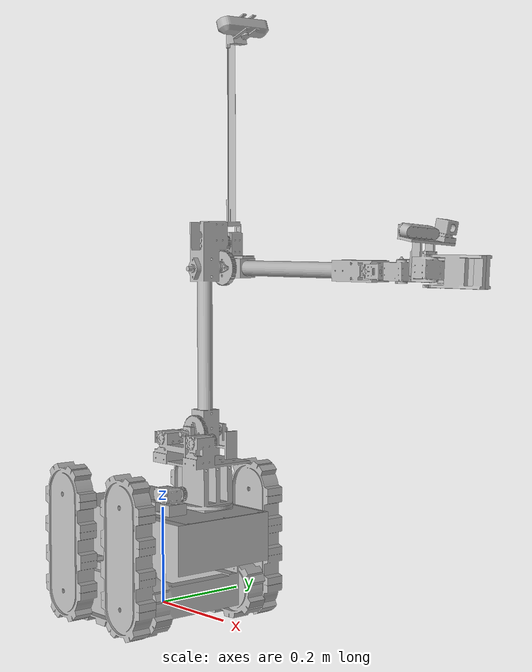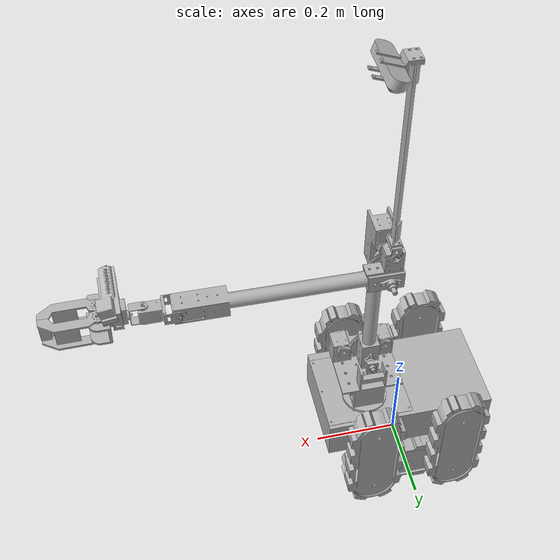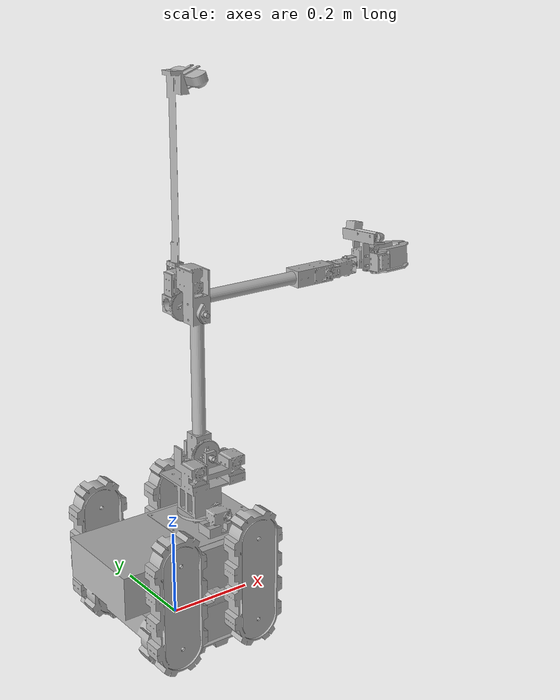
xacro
<?xml version="1.0" ?>
<robot name="Hitro" xmlns:xacro="http://www.ros.org/wiki/xacro">

<xacro:include filename="$(find Hitro_description)/urdf/materials.xacro" />
<xacro:include filename="$(find Hitro_description)/urdf/Hitro.trans" />
<xacro:include filename="$(find Hitro_description)/urdf/Hitro.gazebo" />
<link name="base_link">
  <inertial>
    <origin xyz="0.0023455727002161934 0.00047091776694981947 0.13107186560438153" rpy="0 0 0"/>
    <mass value="11.789533003371805"/>
    <inertia ixx="0.107649" iyy="0.183929" izz="0.214336" ixy="0.0" iyz="-2e-06" ixz="-3.3e-05"/>
  </inertial>
  <visual>
    <origin xyz="0 0 0" rpy="0 0 0"/>
    <geometry>
      <mesh filename="package://Hitro_description/meshes/base_link.stl" scale="0.001 0.001 0.001"/>
    </geometry>
    <material name="silver"/>
  </visual>
  <collision>
    <origin xyz="0 0 0" rpy="0 0 0"/>
    <geometry>
      <mesh filename="package://Hitro_description/meshes/base_link.stl" scale="0.001 0.001 0.001"/>
    </geometry>
  </collision>
</link>

<link name="br_flipper_1">
  <inertial>
    <origin xyz="-6.928644614213886e-05 -0.026691787947826423 0.09533601614626816" rpy="0 0 0"/>
    <mass value="0.8856424819003467"/>
    <inertia ixx="0.008874" iyy="0.009821" izz="0.001203" ixy="-0.0" iyz="0.000109" ixz="5e-06"/>
  </inertial>
  <visual>
    <origin xyz="0.098623 0.136529 -0.03399" rpy="0 0 0"/>
    <geometry>
      <mesh filename="package://Hitro_description/meshes/br_flipper_1.stl" scale="0.001 0.001 0.001"/>
    </geometry>
    <material name="silver"/>
  </visual>
  <collision>
    <origin xyz="0.098623 0.136529 -0.03399" rpy="0 0 0"/>
    <geometry>
      <mesh filename="package://Hitro_description/meshes/br_flipper_1.stl" scale="0.001 0.001 0.001"/>
    </geometry>
  </collision>
</link>

<link name="fr_flipper_1">
  <inertial>
    <origin xyz="-6.929773204097933e-05 -0.026691787947827006 0.09533554023830318" rpy="0 0 0"/>
    <mass value="0.8856424819003467"/>
    <inertia ixx="0.008874" iyy="0.009821" izz="0.001203" ixy="-0.0" iyz="0.000109" ixz="5e-06"/>
  </inertial>
  <visual>
    <origin xyz="-0.103377 0.136529 -0.034058" rpy="0 0 0"/>
    <geometry>
      <mesh filename="package://Hitro_description/meshes/fr_flipper_1.stl" scale="0.001 0.001 0.001"/>
    </geometry>
    <material name="silver"/>
  </visual>
  <collision>
    <origin xyz="-0.103377 0.136529 -0.034058" rpy="0 0 0"/>
    <geometry>
      <mesh filename="package://Hitro_description/meshes/fr_flipper_1.stl" scale="0.001 0.001 0.001"/>
    </geometry>
  </collision>
</link>

<link name="bl_flipper_1">
  <inertial>
    <origin xyz="7.444846053443477e-05 0.026691503568869235 0.09531430480252065" rpy="0 0 0"/>
    <mass value="0.8856424819003468"/>
    <inertia ixx="0.008874" iyy="0.00982" izz="0.001203" ixy="-0.0" iyz="-0.000109" ixz="-7e-06"/>
  </inertial>
  <visual>
    <origin xyz="0.098623 -0.137471 -0.03399" rpy="0 0 0"/>
    <geometry>
      <mesh filename="package://Hitro_description/meshes/bl_flipper_1.stl" scale="0.001 0.001 0.001"/>
    </geometry>
    <material name="silver"/>
  </visual>
  <collision>
    <origin xyz="0.098623 -0.137471 -0.03399" rpy="0 0 0"/>
    <geometry>
      <mesh filename="package://Hitro_description/meshes/bl_flipper_1.stl" scale="0.001 0.001 0.001"/>
    </geometry>
  </collision>
</link>

<link name="fl_flipper_1">
  <inertial>
    <origin xyz="7.44371746355943e-05 0.026691503568868236 0.09531382889455595" rpy="0 0 0"/>
    <mass value="0.8856424819003468"/>
    <inertia ixx="0.008874" iyy="0.00982" izz="0.001203" ixy="-0.0" iyz="-0.000109" ixz="-7e-06"/>
  </inertial>
  <visual>
    <origin xyz="-0.103377 -0.137471 -0.034058" rpy="0 0 0"/>
    <geometry>
      <mesh filename="package://Hitro_description/meshes/fl_flipper_1.stl" scale="0.001 0.001 0.001"/>
    </geometry>
    <material name="silver"/>
  </visual>
  <collision>
    <origin xyz="-0.103377 -0.137471 -0.034058" rpy="0 0 0"/>
    <geometry>
      <mesh filename="package://Hitro_description/meshes/fl_flipper_1.stl" scale="0.001 0.001 0.001"/>
    </geometry>
  </collision>
</link>

<link name="arm_base_1">
  <inertial>
    <origin xyz="-0.10046989920058008 -0.12176485106858234 0.015451232617987226" rpy="0 0 0"/>
    <mass value="0.17911052684474799"/>
    <inertia ixx="0.000456" iyy="0.000249" izz="0.000612" ixy="-3.9e-05" iyz="6.3e-05" ixz="9e-06"/>
  </inertial>
  <visual>
    <origin xyz="-0.19232 -0.096071 -0.206587" rpy="0 0 0"/>
    <geometry>
      <mesh filename="package://Hitro_description/meshes/arm_base_1.stl" scale="0.001 0.001 0.001"/>
    </geometry>
    <material name="silver"/>
  </visual>
  <collision>
    <origin xyz="-0.19232 -0.096071 -0.206587" rpy="0 0 0"/>
    <geometry>
      <mesh filename="package://Hitro_description/meshes/arm_base_1.stl" scale="0.001 0.001 0.001"/>
    </geometry>
  </collision>
</link>

<link name="base_1">
  <inertial>
    <origin xyz="-0.0007250558274127239 -0.021534981191169467 0.08573353340348588" rpy="0 0 0"/>
    <mass value="0.6998440147844079"/>
    <inertia ixx="0.002536" iyy="0.002453" izz="0.001958" ixy="-2e-06" iyz="0.000558" ixz="6e-06"/>
  </inertial>
  <visual>
    <origin xyz="-0.099143 -0.039875 -0.212418" rpy="0 0 0"/>
    <geometry>
      <mesh filename="package://Hitro_description/meshes/base_1.stl" scale="0.001 0.001 0.001"/>
    </geometry>
    <material name="silver"/>
  </visual>
  <collision>
    <origin xyz="-0.099143 -0.039875 -0.212418" rpy="0 0 0"/>
    <geometry>
      <mesh filename="package://Hitro_description/meshes/base_1.stl" scale="0.001 0.001 0.001"/>
    </geometry>
  </collision>
</link>

<link name="1link_1">
  <inertial>
    <origin xyz="-0.0008629496221968513 -0.030055296256889887 0.22619297982587672" rpy="0 0 0"/>
    <mass value="0.3811376975336681"/>
    <inertia ixx="0.011662" iyy="0.011561" izz="0.000238" ixy="0.0" iyz="-0.000667" ixz="2.9e-05"/>
  </inertial>
  <visual>
    <origin xyz="-0.098518 -0.069775 -0.366417" rpy="0 0 0"/>
    <geometry>
      <mesh filename="package://Hitro_description/meshes/1link_1.stl" scale="0.001 0.001 0.001"/>
    </geometry>
    <material name="silver"/>
  </visual>
  <collision>
    <origin xyz="-0.098518 -0.069775 -0.366417" rpy="0 0 0"/>
    <geometry>
      <mesh filename="package://Hitro_description/meshes/1link_1.stl" scale="0.001 0.001 0.001"/>
    </geometry>
  </collision>
</link>

<link name="2link_1">
  <inertial>
    <origin xyz="0.20635170196698394 0.038602780502008785 0.0005720601403558234" rpy="0 0 0"/>
    <mass value="0.33819821732309985"/>
    <inertia ixx="0.000175" iyy="0.01074" izz="0.010807" ixy="-0.000219" iyz="-0.0" ixz="-3e-05"/>
  </inertial>
  <visual>
    <origin xyz="-0.097111 -0.066777 -0.700647" rpy="0 0 0"/>
    <geometry>
      <mesh filename="package://Hitro_description/meshes/2link_1.stl" scale="0.001 0.001 0.001"/>
    </geometry>
    <material name="silver"/>
  </visual>
  <collision>
    <origin xyz="-0.097111 -0.066777 -0.700647" rpy="0 0 0"/>
    <geometry>
      <mesh filename="package://Hitro_description/meshes/2link_1.stl" scale="0.001 0.001 0.001"/>
    </geometry>
  </collision>
</link>

<link name="2link2hand_1">
  <inertial>
    <origin xyz="0.05199602533351011 0.02422993039667011 0.000565366789860744" rpy="0 0 0"/>
    <mass value="0.051855108142407236"/>
    <inertia ixx="1.1e-05" iyy="2e-05" izz="2e-05" ixy="0.0" iyz="0.0" ixz="-0.0"/>
  </inertial>
  <visual>
    <origin xyz="-0.51347 -0.082615 -0.702033" rpy="0 0 0"/>
    <geometry>
      <mesh filename="package://Hitro_description/meshes/2link2hand_1.stl" scale="0.001 0.001 0.001"/>
    </geometry>
    <material name="silver"/>
  </visual>
  <collision>
    <origin xyz="-0.51347 -0.082615 -0.702033" rpy="0 0 0"/>
    <geometry>
      <mesh filename="package://Hitro_description/meshes/2link2hand_1.stl" scale="0.001 0.001 0.001"/>
    </geometry>
  </collision>
</link>

<link name="hand_yaw_1">
  <inertial>
    <origin xyz="0.017851837186656172 0.00016947250181670315 -0.018829472095383215" rpy="0 0 0"/>
    <mass value="0.0024620558650562713"/>
    <inertia ixx="1e-06" iyy="1e-06" izz="0.0" ixy="-0.0" iyz="-0.0" ixz="0.0"/>
  </inertial>
  <visual>
    <origin xyz="-0.580748 -0.106765 -0.723346" rpy="0 0 0"/>
    <geometry>
      <mesh filename="package://Hitro_description/meshes/hand_yaw_1.stl" scale="0.001 0.001 0.001"/>
    </geometry>
    <material name="silver"/>
  </visual>
  <collision>
    <origin xyz="-0.580748 -0.106765 -0.723346" rpy="0 0 0"/>
    <geometry>
      <mesh filename="package://Hitro_description/meshes/hand_yaw_1.stl" scale="0.001 0.001 0.001"/>
    </geometry>
  </collision>
</link>

<link name="hand_roll_1">
  <inertial>
    <origin xyz="0.03926282562947525 -0.0006343667919676416 0.0280672054007276" rpy="0 0 0"/>
    <mass value="0.2013221293930582"/>
    <inertia ixx="0.00039" iyy="0.000284" izz="0.00023" ixy="1.9e-05" iyz="-5.9e-05" ixz="4.1e-05"/>
  </inertial>
  <visual>
    <origin xyz="-0.608587 -0.106971 -0.704531" rpy="0 0 0"/>
    <geometry>
      <mesh filename="package://Hitro_description/meshes/hand_roll_1.stl" scale="0.001 0.001 0.001"/>
    </geometry>
    <material name="silver"/>
  </visual>
  <collision>
    <origin xyz="-0.608587 -0.106971 -0.704531" rpy="0 0 0"/>
    <geometry>
      <mesh filename="package://Hitro_description/meshes/hand_roll_1.stl" scale="0.001 0.001 0.001"/>
    </geometry>
  </collision>
</link>

<link name="top_right_1">
  <inertial>
    <origin xyz="0.06140861742337256 -0.003150372581042657 -0.023301799927673117" rpy="0 0 0"/>
    <mass value="0.057735310776424194"/>
    <inertia ixx="2.9e-05" iyy="8.1e-05" izz="6.1e-05" ixy="-7e-06" iyz="-1e-06" ixz="0.0"/>
  </inertial>
  <visual>
    <origin xyz="-0.667521 -0.094865 -0.728561" rpy="0 0 0"/>
    <geometry>
      <mesh filename="package://Hitro_description/meshes/top_right_1.stl" scale="0.001 0.001 0.001"/>
    </geometry>
    <material name="silver"/>
  </visual>
  <collision>
    <origin xyz="-0.667521 -0.094865 -0.728561" rpy="0 0 0"/>
    <geometry>
      <mesh filename="package://Hitro_description/meshes/top_right_1.stl" scale="0.001 0.001 0.001"/>
    </geometry>
  </collision>
</link>

<link name="top_left_1">
  <inertial>
    <origin xyz="0.0612388368041108 0.001928996052491333 -0.023205210120308517" rpy="0 0 0"/>
    <mass value="0.057732876202703155"/>
    <inertia ixx="2.8e-05" iyy="8.1e-05" izz="6.1e-05" ixy="5e-06" iyz="-1e-06" ixz="-1e-06"/>
  </inertial>
  <visual>
    <origin xyz="-0.667422 -0.122865 -0.727649" rpy="0 0 0"/>
    <geometry>
      <mesh filename="package://Hitro_description/meshes/top_left_1.stl" scale="0.001 0.001 0.001"/>
    </geometry>
    <material name="silver"/>
  </visual>
  <collision>
    <origin xyz="-0.667422 -0.122865 -0.727649" rpy="0 0 0"/>
    <geometry>
      <mesh filename="package://Hitro_description/meshes/top_left_1.stl" scale="0.001 0.001 0.001"/>
    </geometry>
  </collision>
</link>

<link name="cam_dxl_1">
  <inertial>
    <origin xyz="-0.04266345230309464 -3.3401122651308124e-05 0.025849557394803324" rpy="0 0 0"/>
    <mass value="0.07050498414159351"/>
    <inertia ixx="2.5e-05" iyy="3.3e-05" izz="2.2e-05" ixy="-0.0" iyz="0.0" ixz="4e-06"/>
  </inertial>
  <visual>
    <origin xyz="-0.136776 -0.110572 -0.720755" rpy="0 0 0"/>
    <geometry>
      <mesh filename="package://Hitro_description/meshes/cam_dxl_1.stl" scale="0.001 0.001 0.001"/>
    </geometry>
    <material name="silver"/>
  </visual>
  <collision>
    <origin xyz="-0.136776 -0.110572 -0.720755" rpy="0 0 0"/>
    <geometry>
      <mesh filename="package://Hitro_description/meshes/cam_dxl_1.stl" scale="0.001 0.001 0.001"/>
    </geometry>
  </collision>
</link>

<link name="cam_arm_1">
  <inertial>
    <origin xyz="0.028529077801785402 0.01885733110909807 0.3803187175929603" rpy="0 0 0"/>
    <mass value="0.16352229320965447"/>
    <inertia ixx="0.002241" iyy="0.00219" izz="0.000176" ixy="-0.0" iyz="1e-06" ixz="-0.000211"/>
  </inertial>
  <visual>
    <origin xyz="-0.091309 -0.08979 -0.763131" rpy="0 0 0"/>
    <geometry>
      <mesh filename="package://Hitro_description/meshes/cam_arm_1.stl" scale="0.001 0.001 0.001"/>
    </geometry>
    <material name="silver"/>
  </visual>
  <collision>
    <origin xyz="-0.091309 -0.08979 -0.763131" rpy="0 0 0"/>
    <geometry>
      <mesh filename="package://Hitro_description/meshes/cam_arm_1.stl" scale="0.001 0.001 0.001"/>
    </geometry>
  </collision>
</link>

<link name="re_and_thermal_1">
  <inertial>
    <origin xyz="-0.003178633669971842 -0.011369787077590635 0.0573434301829564" rpy="0 0 0"/>
    <mass value="0.04950122906418615"/>
    <inertia ixx="6.7e-05" iyy="2.8e-05" izz="4.8e-05" ixy="0.0" iyz="2e-06" ixz="2e-06"/>
  </inertial>
  <visual>
    <origin xyz="-0.635567 -0.120884 -0.697926" rpy="0 0 0"/>
    <geometry>
      <mesh filename="package://Hitro_description/meshes/re_and_thermal_1.stl" scale="0.001 0.001 0.001"/>
    </geometry>
    <material name="silver"/>
  </visual>
  <collision>
    <origin xyz="-0.635567 -0.120884 -0.697926" rpy="0 0 0"/>
    <geometry>
      <mesh filename="package://Hitro_description/meshes/re_and_thermal_1.stl" scale="0.001 0.001 0.001"/>
    </geometry>
  </collision>
</link>

<joint name="br_flipper" type="continuous">
  <origin xyz="-0.098623 -0.136529 0.03399" rpy="0 0 0"/>
  <parent link="base_link"/>
  <child link="br_flipper_1"/>
  <axis xyz="0.0 1.0 0.0"/>
</joint>

<joint name="fr_flipper" type="continuous">
  <origin xyz="0.103377 -0.136529 0.034058" rpy="0 0 0"/>
  <parent link="base_link"/>
  <child link="fr_flipper_1"/>
  <axis xyz="-0.0 -1.0 -0.0"/>
</joint>

<joint name="bl_flipper" type="continuous">
  <origin xyz="-0.098623 0.137471 0.03399" rpy="0 0 0"/>
  <parent link="base_link"/>
  <child link="bl_flipper_1"/>
  <axis xyz="-0.0 -1.0 -0.0"/>
</joint>

<joint name="fl_flipper" type="continuous">
  <origin xyz="0.103377 0.137471 0.034058" rpy="0 0 0"/>
  <parent link="base_link"/>
  <child link="fl_flipper_1"/>
  <axis xyz="-0.0 -1.0 -0.0"/>
</joint>

<joint name="body_base" type="fixed">
  <origin xyz="0.19232 0.096071 0.206587" rpy="0 0 0"/>
  <parent link="base_link"/>
  <child link="arm_base_1"/>
</joint>

<joint name="square2base" type="continuous">
  <origin xyz="-0.093177 -0.056196 0.005831" rpy="0 0 0"/>
  <parent link="arm_base_1"/>
  <child link="base_1"/>
  <axis xyz="-0.001817 -5e-06 0.999998"/>
</joint>

<joint name="base21link" type="continuous">
  <origin xyz="-0.000625 0.0299 0.153999" rpy="0 0 0"/>
  <parent link="base_1"/>
  <child link="1link_1"/>
  <axis xyz="0.005194 0.999987 1.5e-05"/>
</joint>

<joint name="1link22link" type="continuous">
  <origin xyz="-0.001407 -0.002998 0.33423" rpy="0 0 0"/>
  <parent link="1link_1"/>
  <child link="2link_1"/>
  <axis xyz="-0.005194 -0.999987 -1.5e-05"/>
</joint>

<joint name="2link2hand" type="continuous">
  <origin xyz="0.416359 0.015838 0.001386" rpy="0 0 0"/>
  <parent link="2link_1"/>
  <child link="2link2hand_1"/>
  <axis xyz="0.005194 0.999987 1.5e-05"/>
</joint>

<joint name="handyaw" type="continuous">
  <origin xyz="0.067278 0.02415 0.021313" rpy="0 0 0"/>
  <parent link="2link2hand_1"/>
  <child link="hand_yaw_1"/>
  <axis xyz="0.004657 -9e-06 -0.999989"/>
</joint>

<joint name="handroll" type="continuous">
  <origin xyz="0.027839 0.000206 -0.018815" rpy="0 0 0"/>
  <parent link="hand_yaw_1"/>
  <child link="hand_roll_1"/>
  <axis xyz="-0.999982 -0.003677 -0.004657"/>
</joint>

<joint name="top_right" type="continuous">
  <origin xyz="0.058934 -0.012106 0.02403" rpy="0 0 0"/>
  <parent link="hand_roll_1"/>
  <child link="top_right_1"/>
  <axis xyz="0.004885 -0.06463 -0.997897"/>
</joint>

<joint name="top_left" type="continuous">
  <origin xyz="0.058835 0.015894 0.023118" rpy="0 0 0"/>
  <parent link="hand_roll_1"/>
  <child link="top_left_1"/>
  <axis xyz="0.004885 -0.06463 -0.997897"/>
</joint>

<joint name="cam_dxl" type="fixed">
  <origin xyz="0.039665 0.043795 0.020108" rpy="0 0 0"/>
  <parent link="2link_1"/>
  <child link="cam_dxl_1"/>
</joint>

<joint name="cam_angle" type="continuous">
  <origin xyz="-0.045467 -0.020782 0.042376" rpy="0 0 0"/>
  <parent link="cam_dxl_1"/>
  <child link="cam_arm_1"/>
  <axis xyz="0.004819 0.999988 1.4e-05"/>
</joint>

<joint name="re_and_th" type="fixed">
  <origin xyz="0.02698 0.013913 -0.006605" rpy="0 0 0"/>
  <parent link="hand_roll_1"/>
  <child link="re_and_thermal_1"/>
</joint>

</robot>

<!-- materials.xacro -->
<robot name="Hitro" xmlns:xacro="http://www.ros.org/wiki/xacro" >

<material name="silver">
  <color rgba="0.700 0.700 0.700 1.000"/>
</material>

</robot>

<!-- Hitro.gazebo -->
<robot name="Hitro" xmlns:xacro="http://www.ros.org/wiki/xacro" >

<xacro:property name="body_color" value="Gazebo/Silver" />

<gazebo>
  <plugin name="control" filename="libgazebo_ros_control.so"/>
</gazebo>
<gazebo reference="base_link">
  <material>${body_color}</material>
  <mu1>0.2</mu1>
  <mu2>0.2</mu2>
  <selfCollide>true</selfCollide>
  <gravity>true</gravity>
</gazebo>

<gazebo reference="br_flipper_1">
  <material>${body_color}</material>
  <mu1>0.2</mu1>
  <mu2>0.2</mu2>
  <selfCollide>true</selfCollide>
</gazebo>

<gazebo reference="fr_flipper_1">
  <material>${body_color}</material>
  <mu1>0.2</mu1>
  <mu2>0.2</mu2>
  <selfCollide>true</selfCollide>
</gazebo>

<gazebo reference="bl_flipper_1">
  <material>${body_color}</material>
  <mu1>0.2</mu1>
  <mu2>0.2</mu2>
  <selfCollide>true</selfCollide>
</gazebo>

<gazebo reference="fl_flipper_1">
  <material>${body_color}</material>
  <mu1>0.2</mu1>
  <mu2>0.2</mu2>
  <selfCollide>true</selfCollide>
</gazebo>

<gazebo reference="arm_base_1">
  <material>${body_color}</material>
  <mu1>0.2</mu1>
  <mu2>0.2</mu2>
  <selfCollide>true</selfCollide>
</gazebo>

<gazebo reference="base_1">
  <material>${body_color}</material>
  <mu1>0.2</mu1>
  <mu2>0.2</mu2>
  <selfCollide>true</selfCollide>
</gazebo>

<gazebo reference="1link_1">
  <material>${body_color}</material>
  <mu1>0.2</mu1>
  <mu2>0.2</mu2>
  <selfCollide>true</selfCollide>
</gazebo>

<gazebo reference="2link_1">
  <material>${body_color}</material>
  <mu1>0.2</mu1>
  <mu2>0.2</mu2>
  <selfCollide>true</selfCollide>
</gazebo>

<gazebo reference="2link2hand_1">
  <material>${body_color}</material>
  <mu1>0.2</mu1>
  <mu2>0.2</mu2>
  <selfCollide>true</selfCollide>
</gazebo>

<gazebo reference="hand_yaw_1">
  <material>${body_color}</material>
  <mu1>0.2</mu1>
  <mu2>0.2</mu2>
  <selfCollide>true</selfCollide>
</gazebo>

<gazebo reference="hand_roll_1">
  <material>${body_color}</material>
  <mu1>0.2</mu1>
  <mu2>0.2</mu2>
  <selfCollide>true</selfCollide>
</gazebo>

<gazebo reference="top_right_1">
  <material>${body_color}</material>
  <mu1>0.2</mu1>
  <mu2>0.2</mu2>
  <selfCollide>true</selfCollide>
</gazebo>

<gazebo reference="top_left_1">
  <material>${body_color}</material>
  <mu1>0.2</mu1>
  <mu2>0.2</mu2>
  <selfCollide>true</selfCollide>
</gazebo>

<gazebo reference="cam_dxl_1">
  <material>${body_color}</material>
  <mu1>0.2</mu1>
  <mu2>0.2</mu2>
  <selfCollide>true</selfCollide>
</gazebo>

<gazebo reference="cam_arm_1">
  <material>${body_color}</material>
  <mu1>0.2</mu1>
  <mu2>0.2</mu2>
  <selfCollide>true</selfCollide>
</gazebo>

<gazebo reference="re_and_thermal_1">
  <material>${body_color}</material>
  <mu1>0.2</mu1>
  <mu2>0.2</mu2>
  <selfCollide>true</selfCollide>
</gazebo>

</robot>
